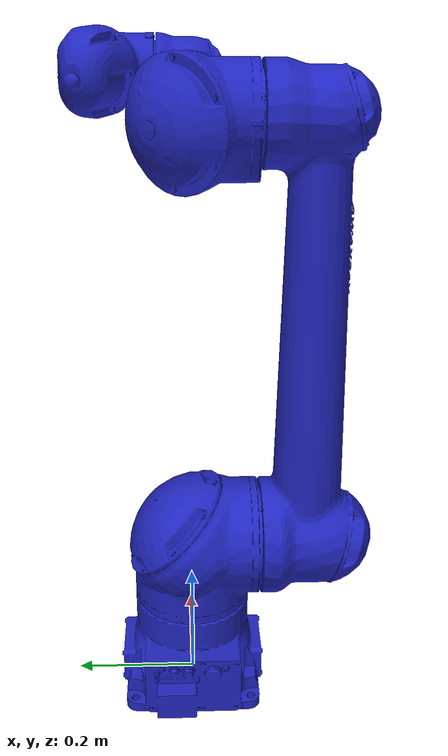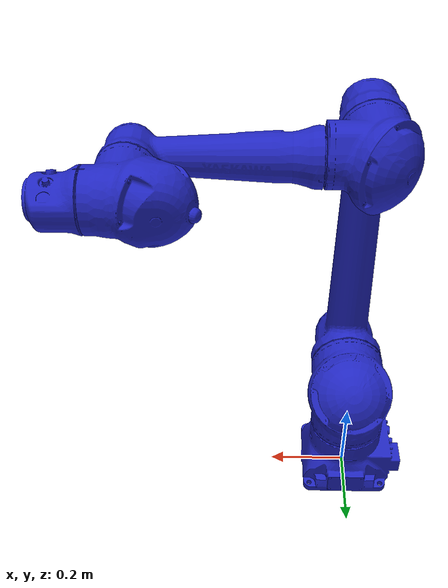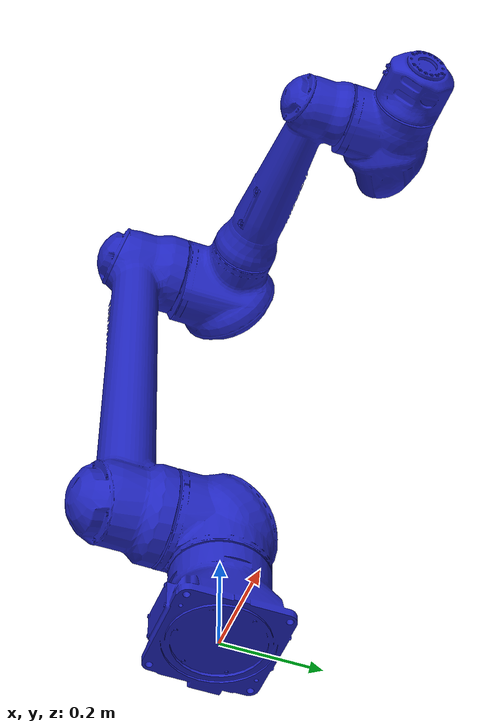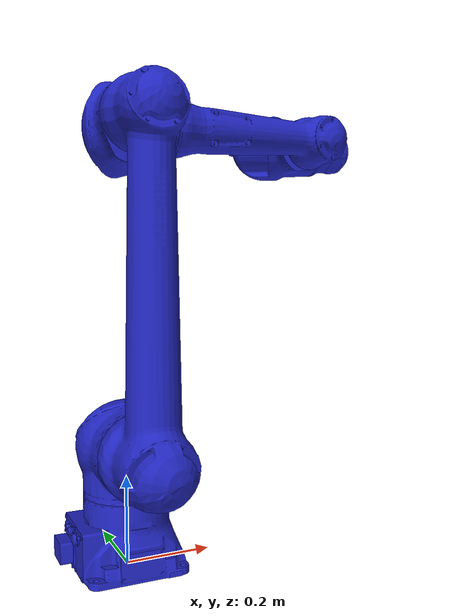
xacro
<?xml version="1.0" ?>
<robot name="motoman_hc10dt_b10" xmlns:xacro="http://ros.org/wiki/xacro">

  <xacro:arg name="arm_id" default=""/> <!-- Name of this robot, not used yet -->
  <xacro:arg name="robot_ip" default=""/> <!-- IP address or hostname of the robot -->
  <xacro:arg name="axis_increment_factor" default=""/> <!-- Set increment factor for all robot axis -->
  <xacro:arg name="axis_acceleration_factor" default=""/> <!-- Set acceleration factor for all robot axis -->
  <xacro:arg name="use_mock_hardware" default="false"/> <!-- Mirror commands to hardware states -->
  <xacro:arg name="sim_gazebo" default="false" /> <!-- Use gazebo simulation-->

  <xacro:include filename="$(find motoman_description)/robots/hc10dt_b10_macro.xacro" />
  <xacro:motoman_hc10dt_b10 prefix=""/>

  <xacro:include filename="$(find motoman_description)/robots/ros2_control.xacro"/>
  <xacro:motoman_ros2_control
    ns="$(arg arm_id)"
    robot_ip="$(arg robot_ip)"
    axis_increment_factor="$(arg axis_increment_factor)"
    axis_acceleration_factor="$(arg axis_acceleration_factor)"
    mock_hardware="$(arg use_mock_hardware)"
    sim_gazebo="$(arg sim_gazebo)"
  />

</robot>

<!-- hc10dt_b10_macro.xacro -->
<robot xmlns:xacro="http://ros.org/wiki/xacro">
  <xacro:macro name="motoman_hc10dt_b10" params="prefix">
    <xacro:include filename="$(find motoman_description)/robots/common_materials.xacro"/>

    <!-- link list -->
    <link name="${prefix}base_link">
      <inertial>
        <mass value="1"/>
        <inertia ixx="1"  ixy="0"  ixz="0" iyy="1" iyz="0" izz="1" />
      </inertial>
      <visual>
        <geometry>
          <mesh filename="package://motoman_description/meshes/hc10dt_b10/visual/base_link.dae"/>
        </geometry>
        <xacro:material_yaskawa_blue/>
      </visual>
      <collision>
        <geometry>
          <mesh filename="package://motoman_description/meshes/hc10dt_b10/collision/base_link.stl"/>
        </geometry>
      </collision>
    </link>
    <link name="${prefix}link_1_s">
      <inertial>
        <mass value="1"/>
        <inertia ixx="1"  ixy="0"  ixz="0" iyy="1" iyz="0" izz="1" />
      </inertial>
      <visual>
        <geometry>
          <mesh filename="package://motoman_description/meshes/hc10dt_b10/visual/link_1_s.dae"/>
        </geometry>
        <xacro:material_yaskawa_blue/>
      </visual>
      <collision>
        <geometry>
          <mesh filename="package://motoman_description/meshes/hc10dt_b10/collision/link_1_s.stl"/>
        </geometry>
      </collision>
    </link>
    <link name="${prefix}link_2_l">
      <inertial>
        <mass value="1"/>
        <inertia ixx="1"  ixy="0"  ixz="0" iyy="1" iyz="0" izz="1" />
      </inertial>
      <visual>
        <geometry>
          <mesh filename="package://motoman_description/meshes/hc10dt_b10/visual/link_2_l.dae"/>
        </geometry>
        <xacro:material_yaskawa_blue/>
      </visual>
      <collision>
        <geometry>
          <mesh filename="package://motoman_description/meshes/hc10dt_b10/collision/link_2_l.stl"/>
        </geometry>
      </collision>
    </link>
    <link name="${prefix}link_3_u">
      <inertial>
        <mass value="1"/>
        <inertia ixx="1"  ixy="0"  ixz="0" iyy="1" iyz="0" izz="1" />
      </inertial>
      <visual>
        <geometry>
          <mesh filename="package://motoman_description/meshes/hc10dt_b10/visual/link_3_u.dae"/>
        </geometry>
        <xacro:material_yaskawa_blue/>
      </visual>
      <collision>
        <geometry>
          <mesh filename="package://motoman_description/meshes/hc10dt_b10/collision/link_3_u.stl"/>
        </geometry>
      </collision>
    </link>
    <link name="${prefix}link_4_r">
      <inertial>
        <mass value="1"/>
        <inertia ixx="1"  ixy="0"  ixz="0" iyy="1" iyz="0" izz="1" />
      </inertial>
      <visual>
        <geometry>
          <mesh filename="package://motoman_description/meshes/hc10dt_b10/visual/link_4_r.dae"/>
        </geometry>
        <xacro:material_yaskawa_blue/>
      </visual>
      <collision>
        <geometry>
          <mesh filename="package://motoman_description/meshes/hc10dt_b10/collision/link_4_r.stl"/>
        </geometry>
      </collision>
    </link>
    <link name="${prefix}link_5_b">
      <inertial>
        <mass value="1"/>
        <inertia ixx="1"  ixy="0"  ixz="0" iyy="1" iyz="0" izz="1" />
      </inertial>
      <visual>
        <geometry>
          <mesh filename="package://motoman_description/meshes/hc10dt_b10/visual/link_5_b.dae"/>
        </geometry>
        <xacro:material_yaskawa_blue/>
      </visual>
      <collision>
        <geometry>
          <mesh filename="package://motoman_description/meshes/hc10dt_b10/collision/link_5_b.stl"/>
        </geometry>
      </collision>
    </link>
    <link name="${prefix}link_6_t">
      <inertial>
        <mass value="1"/>
        <inertia ixx="1"  ixy="0"  ixz="0" iyy="1" iyz="0" izz="1" />
      </inertial>
      <visual>
        <geometry>
          <mesh filename="package://motoman_description/meshes/hc10dt_b10/visual/link_6_t.dae"/>
        </geometry>
        <xacro:material_yaskawa_blue/>
      </visual>
      <collision>
        <geometry>
          <mesh filename="package://motoman_description/meshes/hc10dt_b10/collision/link_6_t.stl"/>
       </geometry>
      </collision>
    </link>
    <!-- end of link list -->

    <!-- joint list -->
    <joint name="${prefix}joint_1_s" type="revolute">
      <parent link="${prefix}base_link"/>
      <child link="${prefix}link_1_s"/>
      <origin xyz="0 0 0.275" rpy="0 0 0" />
      <axis xyz="0 0 1" />
      <limit lower="${radians(-210)}" upper="${radians(210)}" effort="368.48" velocity="${radians(130)}"/>
    </joint>
    <joint name="${prefix}joint_2_l" type="revolute">
      <parent link="${prefix}link_1_s"/>
      <child link="${prefix}link_2_l"/>
      <origin xyz="0 0 0" rpy="0 0 0" />
      <axis xyz="0 1 0" />
      <limit lower="${radians(-180)}" upper="${radians(180)}" effort="414.54" velocity="${radians(130)}"/>
    </joint>
    <joint name="${prefix}joint_3_u" type="revolute">
      <parent link="${prefix}link_2_l"/>
      <child link="${prefix}link_3_u"/>
      <origin xyz="0 0 0.700" rpy="0 0 0" />
      <axis xyz="0 -1 0" />
      <limit lower="${radians(-290)}" upper="${radians(290)}" effort="158.76" velocity="${radians(180)}"/>
    </joint>
    <joint name="${prefix}joint_4_r" type="revolute">
      <parent link="${prefix}link_3_u"/>
      <child link="${prefix}link_4_r"/>
      <origin xyz="0.500 0 0" rpy="0 0 0" />
      <axis xyz="-1 0 0" />
      <limit lower="${radians(-210)}" upper="${radians(210)}" effort="41.16" velocity="${radians(180)}"/>
    </joint>
    <joint name="${prefix}joint_5_b" type="revolute">
      <parent link="${prefix}link_4_r"/>
      <child link="${prefix}link_5_b"/>
      <origin xyz="0 0.162 0" rpy="0 0 0" />
      <axis xyz="0 -1 0" />
      <limit lower="${radians(-180)}" upper="${radians(180)}" effort="33.32" velocity="${radians(250)}"/>
    </joint>
    <joint name="${prefix}joint_6_t" type="revolute">
      <parent link="${prefix}link_5_b"/>
      <child link="${prefix}link_6_t"/>
      <origin xyz="0 0 0" rpy="0 0 0" />
      <axis xyz="-1 0 0" />
      <limit lower="${radians(-210)}" upper="${radians(210)}" effort="31.36" velocity="${radians(250)}"/>
    </joint>
    <!-- end of joint list -->

    <!-- ROS-Industrial 'flange' frame: attachment point for EEF models -->
    <link name="${prefix}flange"/>
    <joint name="${prefix}joint_6_t-flange" type="fixed">
      <origin xyz="0.170 0 0" rpy="0 0 0"/>
      <parent link="${prefix}link_6_t"/>
      <child link="${prefix}flange"/>
    </joint>

    <!-- ROS-Industrial 'tool0' frame: all-zeros tool frame -->
    <link name="${prefix}tool0"/>
    <joint name="${prefix}flange-tool0" type="fixed">
      <origin xyz="0 0 0" rpy="${radians(180)} ${radians(-90)} 0"/>
      <parent link="${prefix}flange"/>
      <child link="${prefix}tool0"/>
    </joint>

    <!-- ROS base_link to Robot Manufacturer World Coordinates transform -->
    <link name="${prefix}base" />
    <joint name="${prefix}base_link-base" type="fixed">
      <origin xyz="0 0 0.275" rpy="0 0 0"/>
      <parent link="${prefix}base_link"/>
      <child link="${prefix}base"/>
    </joint>
  </xacro:macro>
</robot>

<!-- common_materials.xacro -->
<robot xmlns:xacro="http://ros.org/wiki/xacro">
  <xacro:include filename="$(find motoman_description)/robots/common_colors.xacro"/>

  <xacro:macro name="material_yaskawa_blue">
    <material name="">
      <color rgba="${color_yaskawa_blue}"/>
    </material>
  </xacro:macro>

  <xacro:macro name="material_yaskawa_white">
    <material name="">
      <color rgba="${color_yaskawa_white}"/>
    </material>
  </xacro:macro>

  <!-- not an official colour, but used in some old xacro:macros -->
  <xacro:macro name="material_yaskawa_yellow">
    <material name="">
      <color rgba="${color_yaskawa_yellow}"/>
    </material>
  </xacro:macro>

  <!-- not an official colour, but used in some old xacro:macros -->
  <xacro:macro name="material_yaskawa_silver">
    <material name="">
      <color rgba="${color_yaskawa_silver}"/>
    </material>
  </xacro:macro>
</robot>

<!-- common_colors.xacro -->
<robot xmlns:xacro="http://ros.org/wiki/xacro">
  <xacro:property name="color_yaskawa_blue" value="${33/255} ${38/255} ${191/255} 1.0"/>

  <xacro:property name="color_yaskawa_white" value="0.99 0.99 0.99 1"/>

  <!-- not an official colour, but used in some old xacro:macros -->
  <xacro:property name="color_yaskawa_yellow" value="0 1 1 1"/>

  <!-- not an official colour, but used in some old xacro:macros -->
  <xacro:property name="color_yaskawa_silver" value="0.8 0.8 0.8 1"/>
</robot>
